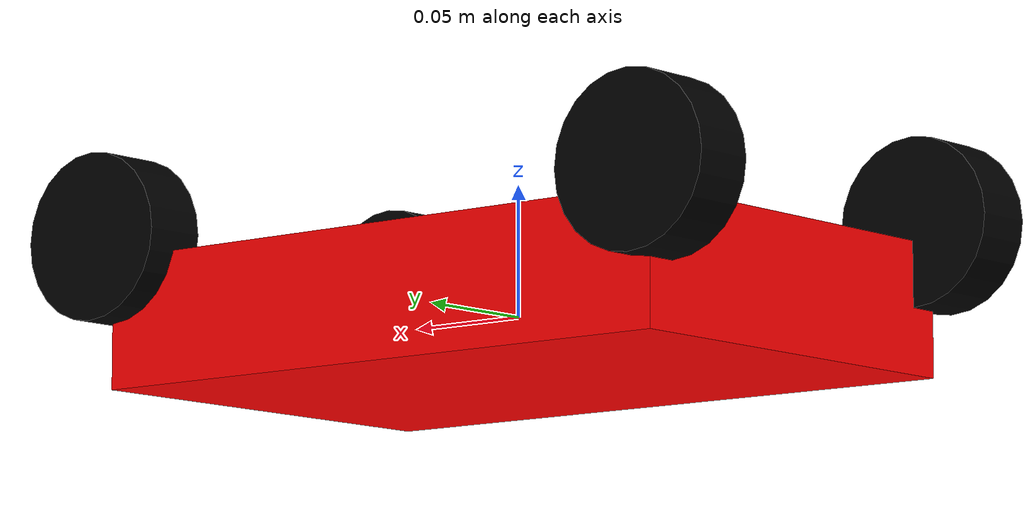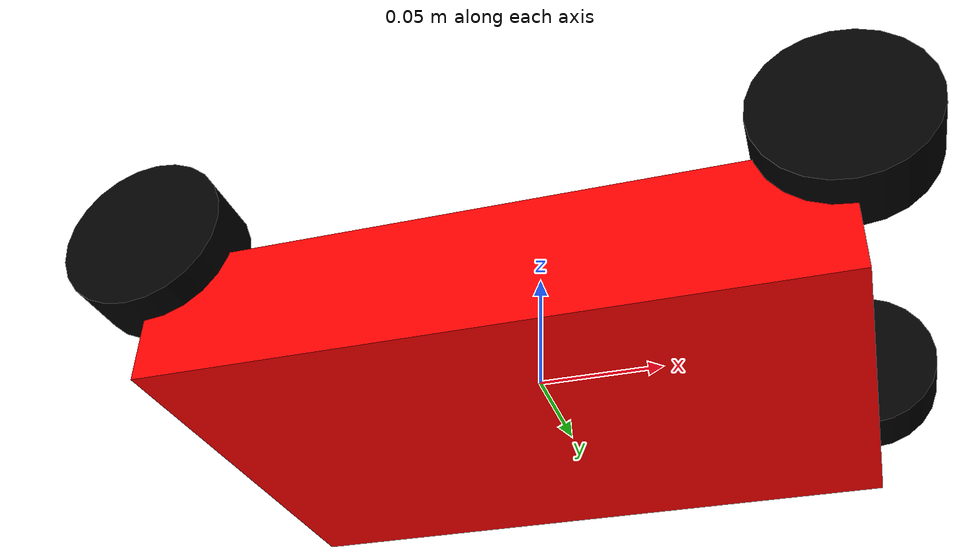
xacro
<?xml version="1.0"?>
<robot name="smartcar" xmlns:xacro="http://ros.org/wiki/xacro">

  <!-- Properties for the robot -->
  <xacro:property name="wheel_diameter" value="0.064"/>
  <xacro:property name="wheel_width" value="0.025"/>
  <xacro:property name="wheelbase_length" value="0.257"/>
  <xacro:property name="wheelbase_width" value="0.17"/>

  <material name="blue">
    <color rgba="0 0 1 1"/>
  </material>

  <material name="red">
    <color rgba="1 0 0 1"/>
  </material>

  <material name="green">
    <color rgba="0 1 0 1"/>
  </material>

  <material name="black">
    <color rgba="0 0 0 1"/>
  </material>

  <!-- Chassis -->
  <link name="chassis_link">
    <visual>
      <geometry>
        <box size="${wheelbase_length} ${wheelbase_width} 0.05" />
      </geometry>
      <material name="red"/>
    </visual>
    <collision>
      <geometry>
        <box size="${wheelbase_length} ${wheelbase_width} 0.05" />
      </geometry>
    </collision>
    <inertial>
      <mass value="5.0"/>
      <origin xyz="0 0 0.025"/>
      <inertia ixx="0.1" ixy="0.0" ixz="0.0" iyy="0.1" iyz="0.0" izz="0.1"/>
    </inertial>
  </link>

  <!-- Wheels -->
  <xacro:macro name="wheel" params="name joint_parent joint_name xyz_offset">
    <link name="${name}">
      <visual>
        <geometry>
          <cylinder radius="${wheel_diameter / 2}" length="${wheel_width}" />
        </geometry>
        <material name="black" />
      </visual>
      <collision>
        <geometry>
          <cylinder radius="${wheel_diameter / 2}" length="${wheel_width}" />
        </geometry>
      </collision>
      <inertial>
        <mass value="0.1"/>
        <origin xyz="0 0 0"/>
        <inertia ixx="0.001" ixy="0.0" ixz="0.0" iyy="0.001" iyz="0.0" izz="0.001"/>
      </inertial>
    </link>

    <joint name="${joint_name}" type="continuous">
      <parent link="${joint_parent}"/>
      <child link="${name}"/>
      <origin xyz="${xyz_offset} ${wheel_diameter / 2}" rpy="1.57 0 0"/>
      <axis xyz="0 0 1"/>
    </joint>
  </xacro:macro>

  <!-- Rear wheels -->
  <xacro:wheel name="back_left_wheel" joint_parent="chassis_link" joint_name="back_left_wheel_joint" xyz_offset="-${wheelbase_length / 2} -${wheelbase_width / 2}"/>
  <xacro:wheel name="back_right_wheel" joint_parent="chassis_link" joint_name="back_right_wheel_joint" xyz_offset="-${wheelbase_length / 2} ${wheelbase_width / 2}"/>

  <!-- Front wheels with steering links -->
  <link name="front_left_steering_link">
    <inertial>
        <mass value="0.1"/>
        <origin xyz="0 0 0"/>
        <inertia ixx="0.001" ixy="0.0" ixz="0.0" iyy="0.001" iyz="0.0" izz="0.001"/>
    </inertial>
  </link>
  <link name="front_right_steering_link">
    <inertial>
        <mass value="0.1"/>
        <origin xyz="0 0 0"/>
        <inertia ixx="0.001" ixy="0.0" ixz="0.0" iyy="0.001" iyz="0.0" izz="0.001"/>
    </inertial>
  </link>

  <!-- Front wheels with steering enabled -->
  <joint name="front_left_steer_joint" type="revolute">
    <parent link="chassis_link"/>
    <child link="front_left_steering_link"/>
    <origin xyz="${wheelbase_length / 2} -${wheelbase_width / 2} 0"/>
    <axis xyz="0 0 1"/>
    <limit lower="-${45*(3.1415 /180)}" upper="${45*(3.1415 /180)}" effort="10" velocity="1"/>
  </joint>
  <joint name="front_right_steer_joint" type="revolute">
    <parent link="chassis_link"/>
    <child link="front_right_steering_link"/>
    <origin xyz="${wheelbase_length / 2} ${wheelbase_width / 2} 0"/>
    <axis xyz="0 0 1"/>
    <limit lower="-${45*(3.1415 /180)}" upper="${45*(3.1415 /180)}" effort="10" velocity="1"/>
  </joint>

  <!-- Front wheels attached to steering links -->
  <xacro:wheel name="front_left_wheel" joint_parent="front_left_steering_link" joint_name="front_left_wheel_joint" xyz_offset="0 0"/>
  <xacro:wheel name="front_right_wheel" joint_parent="front_right_steering_link" joint_name="front_right_wheel_joint" xyz_offset="0 0"/>

  <!-- Sensors -->
  <link name="imu_link">
    <inertial>
      <origin xyz="0 0 0" />
      <mass value="0.1" />
      <inertia ixx="0.001" ixy="0.0" ixz="0.0" iyy="0.001" iyz="0.0" izz="0.001" />
    </inertial>
  </link>

  <joint name="imu_joint" type="fixed">
    <parent link="chassis_link"/>
    <child link="imu_link"/>
    <origin xyz="0.5 0 0" rpy="0 0 0" />
  </joint>

  <link name="sllidar_base_link">
    <inertial>
      <origin xyz="0 0 0" />
      <mass value="0.2" />
      <inertia ixx="0.002" ixy="0.0" ixz="0.0" iyy="0.002" iyz="0.0" izz="0.002" />
    </inertial>
  </link>

  <joint name="lidar_joint" type="fixed">
    <parent link="chassis_link"/>
    <child link="sllidar_base_link"/>
    <origin xyz="1.0 0 0.2" rpy="0 0 0" />
  </joint>

</robot>
